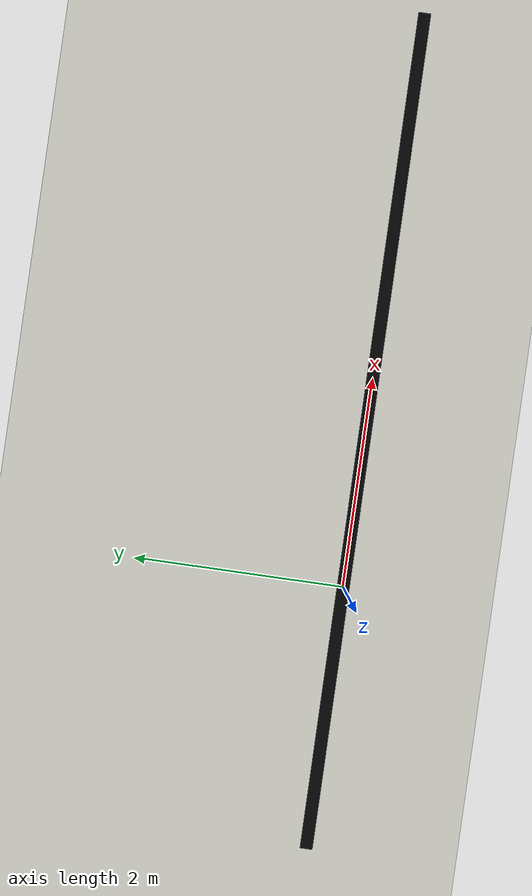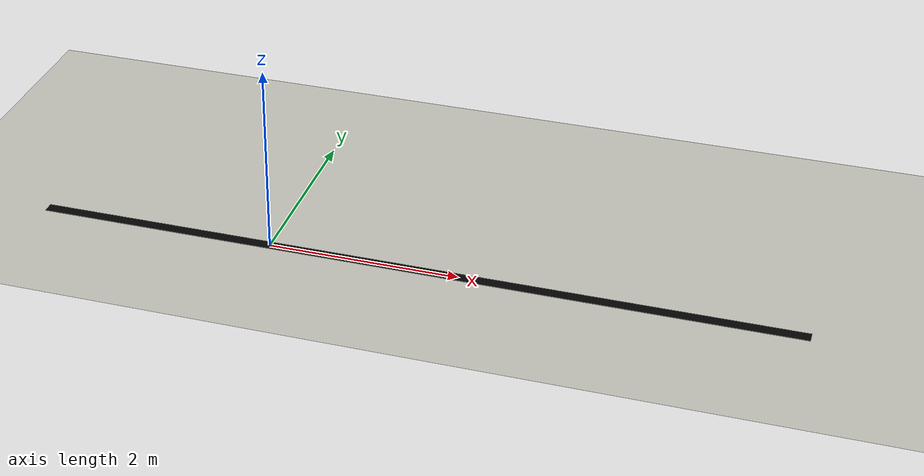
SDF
<?xml version="1.0" ?>
<sdf version="1.6">
  <world name="seam_world">
    <gravity>0 0 -9.8</gravity>

    <physics name="default_physics" type="ode">
      <max_step_size>0.001</max_step_size>
      <real_time_factor>1.0</real_time_factor>
      <real_time_update_rate>1000</real_time_update_rate>
    </physics>

    <scene>
      <ambient>0.55 0.55 0.55 1</ambient>
      <background>0.72 0.72 0.72 1</background>
      <shadows>true</shadows>
    </scene>

    <light name="main_light" type="directional">
      <cast_shadows>true</cast_shadows>
      <pose>0 0 8 0 0 0</pose>
      <diffuse>0.85 0.85 0.85 1</diffuse>
      <specular>0.2 0.2 0.2 1</specular>
      <direction>-0.4 0.2 -0.9</direction>
    </light>

    <model name="ground_plane">
      <static>true</static>
      <link name="ground_link">
        <collision name="ground_collision">
          <geometry>
            <plane>
              <normal>0 0 1</normal>
              <size>20 20</size>
            </plane>
          </geometry>
          <surface>
            <friction>
              <ode>
                <mu>100</mu>
                <mu2>100</mu2>
              </ode>
            </friction>
          </surface>
        </collision>
        <visual name="ground_visual">
          <geometry>
            <plane>
              <normal>0 0 1</normal>
              <size>20 20</size>
            </plane>
          </geometry>
          <material>
            <ambient>0.78 0.78 0.74 1</ambient>
            <diffuse>0.78 0.78 0.74 1</diffuse>
            <specular>0.05 0.05 0.05 1</specular>
          </material>
        </visual>
      </link>
    </model>

    <model name="seam_strip">
      <static>true</static>
      <pose>1.5 0 0.003 0 0 0</pose>
      <link name="seam_link">
        <visual name="seam_visual">
          <geometry>
            <box>
              <size>8.0 0.12 0.004</size>
            </box>
          </geometry>
          <material>
            <ambient>0.01 0.01 0.01 1</ambient>
            <diffuse>0.01 0.01 0.01 1</diffuse>
            <specular>0.0 0.0 0.0 1</specular>
          </material>
        </visual>
      </link>
    </model>

  </world>
</sdf>
